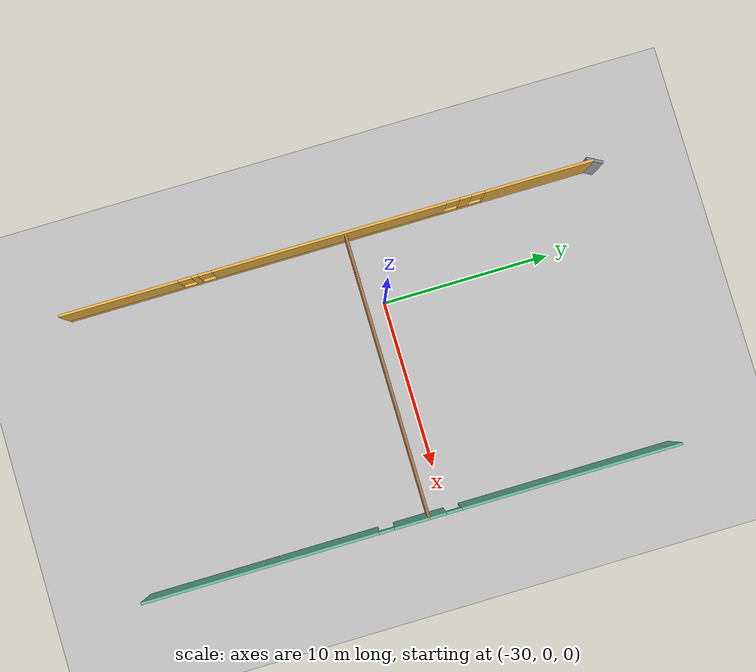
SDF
<sdf version="1.6">
 <world name="default">
  <model name="ground_plane">
   <static>1</static>
   <link name="link">
    <collision name="collision">
     <geometry><plane><normal>0 0 1</normal><size>100 100</size></plane></geometry>
     <surface>
      <contact><collide_bitmask>65535</collide_bitmask></contact>
      <friction><ode><mu>100</mu><mu2>50</mu2></ode></friction>
     </surface>
    </collision>
    <visual name="visual">
     <cast_shadows>0</cast_shadows>
     <geometry><plane><normal>0 0 1</normal><size>100 100</size></plane></geometry>
     <material>
      <script><uri>file://media/materials/scripts/gazebo.material</uri><name>Gazebo/Grey</name></script>
     </material>
    </visual>
   </link>
  </model>
  <model name="world">
   <pose>0.998 -1.93669 0 0 -0 0</pose>
   <link name="Wall_11">
    <pose>-18.4502 -0.168882 0 0 0 -1.5708</pose>
    <visual name="Wall_11_Visual_0">
     <pose>-9.3167 0 1.25 0 -0 0</pose>
     <geometry><box><size>12.8666 0.15 2.5</size></box></geometry>
     <material>
      <script><uri>file://media/materials/scripts/gazebo.material</uri><name>Gazebo/Grey</name></script>
      <ambient>0.435294 0.796078 0.67451 1</ambient>
     </material>
     <meta><layer>0</layer></meta>
    </visual>
    <collision name="Wall_11_Collision_0">
     <geometry><box><size>12.8666 0.15 2.5</size></box></geometry>
     <pose>-9.3167 0 1.25 0 -0 0</pose>
    </collision>
    <visual name="Wall_11_Visual_1">
     <pose>-0.463393 0 1.25 0 -0 0</pose>
     <geometry><box><size>3.04002 0.15 2.5</size></box></geometry>
     <material>
      <script><uri>file://media/materials/scripts/gazebo.material</uri><name>Gazebo/Grey</name></script>
      <ambient>0.435294 0.796078 0.67451 1</ambient>
     </material>
     <meta><layer>0</layer></meta>
    </visual>
    <collision name="Wall_11_Collision_1">
     <geometry><box><size>3.04002 0.15 2.5</size></box></geometry>
     <pose>-0.463393 0 1.25 0 -0 0</pose>
    </collision>
    <visual name="Wall_11_Visual_2">
     <pose>8.85331 0 1.25 0 -0 0</pose>
     <geometry><box><size>13.7934 0.15 2.5</size></box></geometry>
     <material>
      <script><uri>file://media/materials/scripts/gazebo.material</uri><name>Gazebo/Grey</name></script>
      <ambient>0.435294 0.796078 0.67451 1</ambient>
     </material>
     <meta><layer>0</layer></meta>
    </visual>
    <collision name="Wall_11_Collision_2">
     <geometry><box><size>13.7934 0.15 2.5</size></box></geometry>
     <pose>8.85331 0 1.25 0 -0 0</pose>
    </collision>
    <visual name="Wall_11_Visual_3">
     <pose>-2.4334 0 2.25 0 -0 0</pose>
     <geometry><box><size>0.9 0.15 0.5</size></box></geometry>
     <material>
      <script><uri>file://media/materials/scripts/gazebo.material</uri><name>Gazebo/Grey</name></script>
      <ambient>0.435294 0.796078 0.67451 1</ambient>
     </material>
     <meta><layer>0</layer></meta>
    </visual>
    <collision name="Wall_11_Collision_3">
     <geometry><box><size>0.9 0.15 0.5</size></box></geometry>
     <pose>-2.4334 0 2.25 0 -0 0</pose>
    </collision>
    <visual name="Wall_11_Visual_4">
     <pose>1.50662 0 2.25 0 -0 0</pose>
     <geometry><box><size>0.9 0.15 0.5</size></box></geometry>
     <material>
      <script><uri>file://media/materials/scripts/gazebo.material</uri><name>Gazebo/Grey</name></script>
      <ambient>0.435294 0.796078 0.67451 1</ambient>
     </material>
     <meta><layer>0</layer></meta>
    </visual>
    <collision name="Wall_11_Collision_4">
     <geometry><box><size>0.9 0.15 0.5</size></box></geometry>
     <pose>1.50662 0 2.25 0 -0 0</pose>
    </collision>
   </link>
   <link name="Wall_34">
    <collision name="Wall_34_Collision">
     <geometry><box><size>16.75 0.15 2.5</size></box></geometry>
     <pose>0 0 1.25 0 -0 0</pose>
    </collision>
    <visual name="Wall_34_Visual">
     <pose>0 0 1.25 0 -0 0</pose>
     <geometry><box><size>16.75 0.15 2.5</size></box></geometry>
     <material>
      <script><uri>file://media/materials/scripts/gazebo.material</uri><name>Gazebo/Wood</name></script>
      <ambient>1 1 1 1</ambient>
     </material>
     <meta><layer>0</layer></meta>
    </visual>
    <pose>-26.8057 0.804561 0 0 -0 0</pose>
   </link>
   <link name="Wall_5">
    <pose>-35.1988 -0.26193 0 0 0 -1.5708</pose>
    <visual name="Wall_5_Visual_0">
     <pose>-12.5335 0 1.25 0 -0 0</pose>
     <geometry><box><size>6.43309 0.15 2.5</size></box></geometry>
     <material>
      <script><uri>file://media/materials/scripts/gazebo.material</uri><name>Gazebo/Grey</name></script>
      <ambient>1 0.764706 0.305882 1</ambient>
     </material>
     <meta><layer>0</layer></meta>
    </visual>
    <collision name="Wall_5_Collision_0">
     <geometry><box><size>6.43309 0.15 2.5</size></box></geometry>
     <pose>-12.5335 0 1.25 0 -0 0</pose>
    </collision>
    <visual name="Wall_5_Visual_1">
     <pose>3.21654 0 0.25 0 -0 0</pose>
     <geometry><box><size>25.0669 0.15 0.5</size></box></geometry>
     <material>
      <script><uri>file://media/materials/scripts/gazebo.material</uri><name>Gazebo/Grey</name></script>
      <ambient>1 0.764706 0.305882 1</ambient>
     </material>
     <meta><layer>0</layer></meta>
    </visual>
    <collision name="Wall_5_Collision_1">
     <geometry><box><size>25.0669 0.15 0.5</size></box></geometry>
     <pose>3.21654 0 0.25 0 -0 0</pose>
    </collision>
    <visual name="Wall_5_Visual_2">
     <pose>-8.17816 0 1.5 0 -0 0</pose>
     <geometry><box><size>0.677508 0.15 2</size></box></geometry>
     <material>
      <script><uri>file://media/materials/scripts/gazebo.material</uri><name>Gazebo/Grey</name></script>
      <ambient>1 0.764706 0.305882 1</ambient>
     </material>
     <meta><layer>0</layer></meta>
    </visual>
    <collision name="Wall_5_Collision_2">
     <geometry><box><size>0.677508 0.15 2</size></box></geometry>
     <pose>-8.17816 0 1.5 0 -0 0</pose>
    </collision>
    <visual name="Wall_5_Visual_3">
     <pose>-0.127812 0 1.5 0 -0 0</pose>
     <geometry><box><size>13.8232 0.15 2</size></box></geometry>
     <material>
      <script><uri>file://media/materials/scripts/gazebo.material</uri><name>Gazebo/Grey</name></script>
      <ambient>1 0.764706 0.305882 1</ambient>
     </material>
     <meta><layer>0</layer></meta>
    </visual>
    <collision name="Wall_5_Collision_3">
     <geometry><box><size>13.8232 0.15 2</size></box></geometry>
     <pose>-0.127812 0 1.5 0 -0 0</pose>
    </collision>
    <visual name="Wall_5_Visual_4">
     <pose>7.76499 0 1.5 0 -0 0</pose>
     <geometry><box><size>0.362429 0.15 2</size></box></geometry>
     <material>
      <script><uri>file://media/materials/scripts/gazebo.material</uri><name>Gazebo/Grey</name></script>
      <ambient>1 0.764706 0.305882 1</ambient>
     </material>
     <meta><layer>0</layer></meta>
    </visual>
    <collision name="Wall_5_Collision_4">
     <geometry><box><size>0.362429 0.15 2</size></box></geometry>
     <pose>7.76499 0 1.5 0 -0 0</pose>
    </collision>
    <visual name="Wall_5_Visual_5">
     <pose>12.2481 0 1.5 0 -0 0</pose>
     <geometry><box><size>7.00379 0.15 2</size></box></geometry>
     <material>
      <script><uri>file://media/materials/scripts/gazebo.material</uri><name>Gazebo/Grey</name></script>
      <ambient>1 0.764706 0.305882 1</ambient>
     </material>
     <meta><layer>0</layer></meta>
    </visual>
    <collision name="Wall_5_Collision_5">
     <geometry><box><size>7.00379 0.15 2</size></box></geometry>
     <pose>12.2481 0 1.5 0 -0 0</pose>
    </collision>
    <visual name="Wall_5_Visual_6">
     <pose>-8.91691 0 1.9 0 -0 0</pose>
     <geometry><box><size>0.8 0.15 1.2</size></box></geometry>
     <material>
      <script><uri>file://media/materials/scripts/gazebo.material</uri><name>Gazebo/Grey</name></script>
      <ambient>1 0.764706 0.305882 1</ambient>
     </material>
     <meta><layer>0</layer></meta>
    </visual>
    <collision name="Wall_5_Collision_6">
     <geometry><box><size>0.8 0.15 1.2</size></box></geometry>
     <pose>-8.91691 0 1.9 0 -0 0</pose>
    </collision>
    <visual name="Wall_5_Visual_7">
     <pose>-7.4394 0 1.9 0 -0 0</pose>
     <geometry><box><size>0.8 0.15 1.2</size></box></geometry>
     <material>
      <script><uri>file://media/materials/scripts/gazebo.material</uri><name>Gazebo/Grey</name></script>
      <ambient>1 0.764706 0.305882 1</ambient>
     </material>
     <meta><layer>0</layer></meta>
    </visual>
    <collision name="Wall_5_Collision_7">
     <geometry><box><size>0.8 0.15 1.2</size></box></geometry>
     <pose>-7.4394 0 1.9 0 -0 0</pose>
    </collision>
    <visual name="Wall_5_Visual_8">
     <pose>7.18378 0 1.9 0 -0 0</pose>
     <geometry><box><size>0.8 0.15 1.2</size></box></geometry>
     <material>
      <script><uri>file://media/materials/scripts/gazebo.material</uri><name>Gazebo/Grey</name></script>
      <ambient>1 0.764706 0.305882 1</ambient>
     </material>
     <meta><layer>0</layer></meta>
    </visual>
    <collision name="Wall_5_Collision_8">
     <geometry><box><size>0.8 0.15 1.2</size></box></geometry>
     <pose>7.18378 0 1.9 0 -0 0</pose>
    </collision>
    <visual name="Wall_5_Visual_9">
     <pose>8.34621 0 1.9 0 -0 0</pose>
     <geometry><box><size>0.8 0.15 1.2</size></box></geometry>
     <material>
      <script><uri>file://media/materials/scripts/gazebo.material</uri><name>Gazebo/Grey</name></script>
      <ambient>1 0.764706 0.305882 1</ambient>
     </material>
     <meta><layer>0</layer></meta>
    </visual>
    <collision name="Wall_5_Collision_9">
     <geometry><box><size>0.8 0.15 1.2</size></box></geometry>
     <pose>8.34621 0 1.9 0 -0 0</pose>
    </collision>
   </link>
   <link name="Wall_9">
    <collision name="Wall_9_Collision">
     <geometry><box><size>1 0.15 2.5</size></box></geometry>
     <pose>0 0 1.25 0 -0 0</pose>
    </collision>
    <visual name="Wall_9_Visual">
     <pose>0 0 1.25 0 -0 0</pose>
     <geometry><box><size>1 0.15 2.5</size></box></geometry>
     <material>
      <script><uri>file://media/materials/scripts/gazebo.material</uri><name>Gazebo/Grey</name></script>
      <ambient>1 1 1 1</ambient>
     </material>
     <meta><layer>0</layer></meta>
    </visual>
    <pose>-35.1613 15.545 0 0 0 -2.0944</pose>
   </link>
   <static>1</static>
  </model>
 </world>
</sdf>
